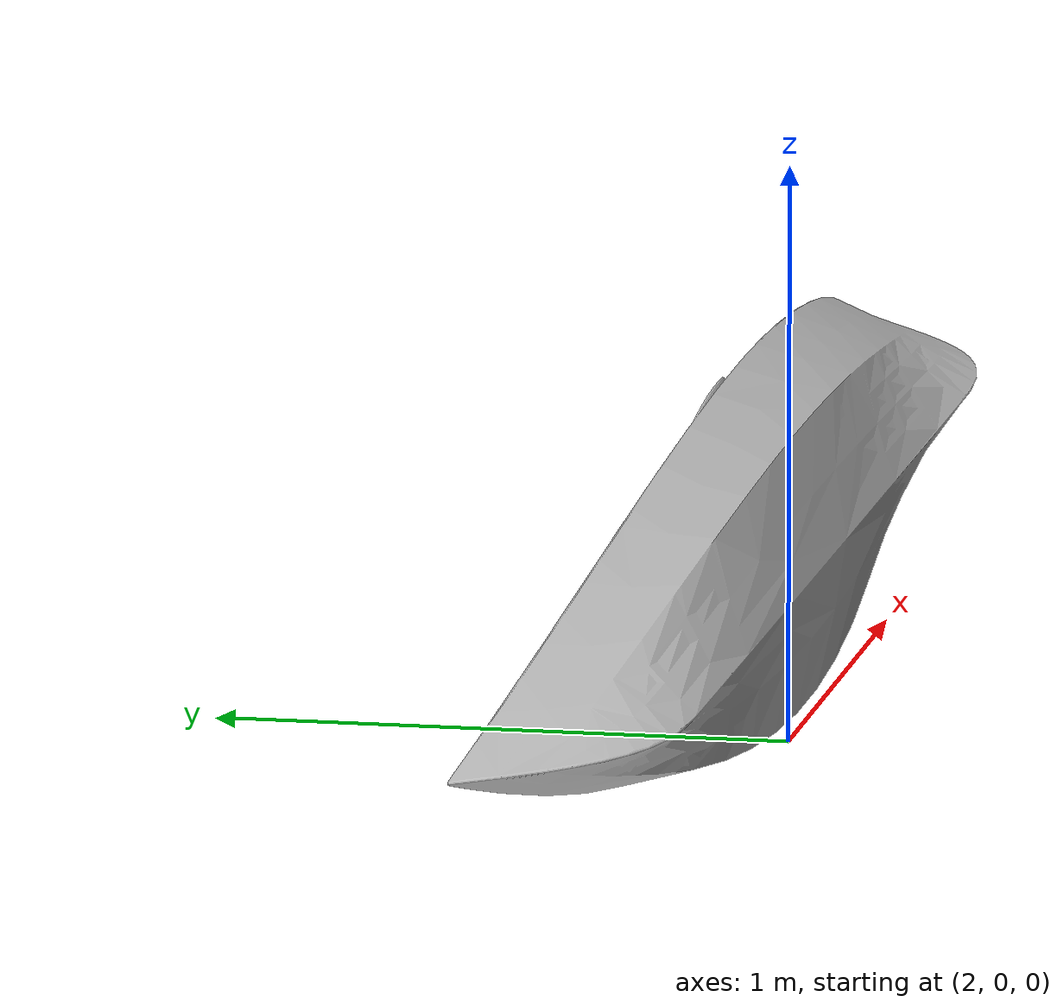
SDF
<?xml version='1.0' ?>

<sdf version='1.4'>
  <model name='KAYAK12.SLDPRT'>
    <link name='KAYAK12.SLDPRT'>
      <pose>0 0 0 0 -0 0</pose>
      <inertial>
        <pose>2.1344 -2.4774e-05 0.36121 0 -0 0</pose>
        <mass>9.4611</mass>
        <inertia>
          <ixx>0.37819</ixx>
          <ixy>0.17464</ixy>
          <ixz>-0.00332303</ixz>
          <iyy>-2.70166e-05</iyy>
          <iyz>-9.63444</iyz>
          <izz>2.70166e-05</izz>
        </inertia>
      </inertial>
      <collision name='KAYAK12.SLDPRT_collision'>
        <pose>2.1344 -2.4774e-05 0.36121 1.5708 -0 0</pose>
        <geometry>
          <mesh>
            <scale>1 1 1</scale>
            <uri>model://KAYAK12.SLDPRT/meshes/KAYAK12.SLDPRT.STL</uri>
          </mesh>
        </geometry>
      </collision>
      <visual name='KAYAK12.SLDPRT_visual'>
        <pose>1.5708 0 0 0 -0 0</pose>
        <geometry>
          <mesh>
            <scale>1 1 1</scale>
            <uri>model://KAYAK12.SLDPRT/meshes/KAYAK12.SLDPRT.STL</uri>
          </mesh>
        </geometry>
      </visual>
      <velocity_decay>
        <linear>0</linear>
        <angular>0</angular>
      </velocity_decay>
    </link>
  </model>
</sdf>
<!-- some comment 1-->
